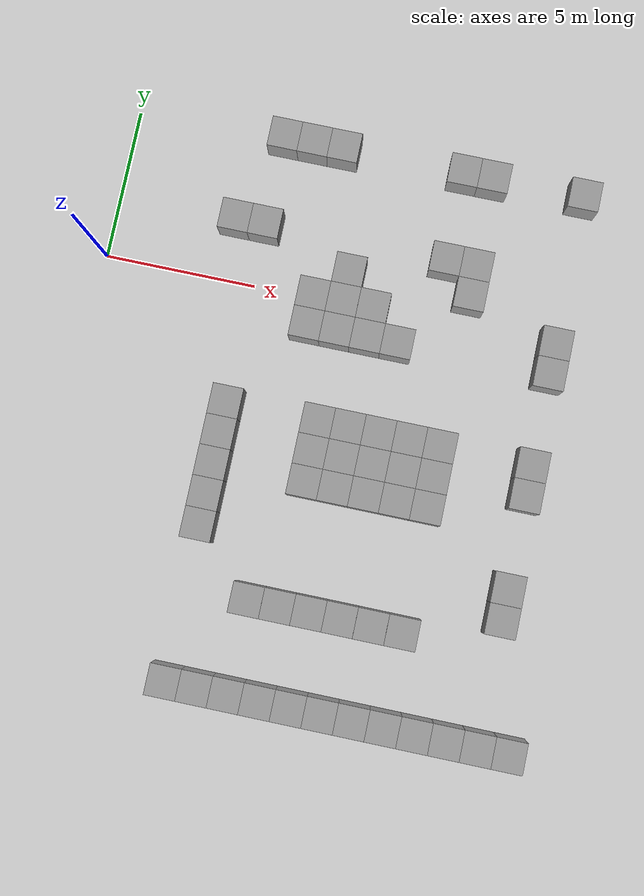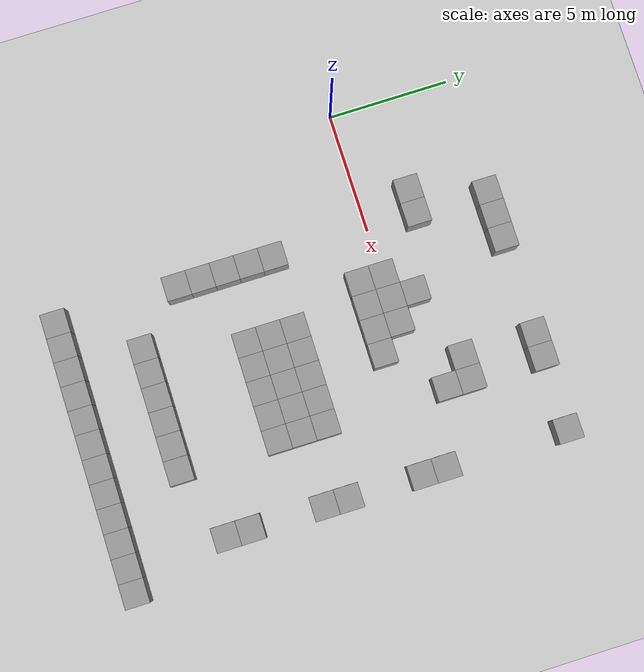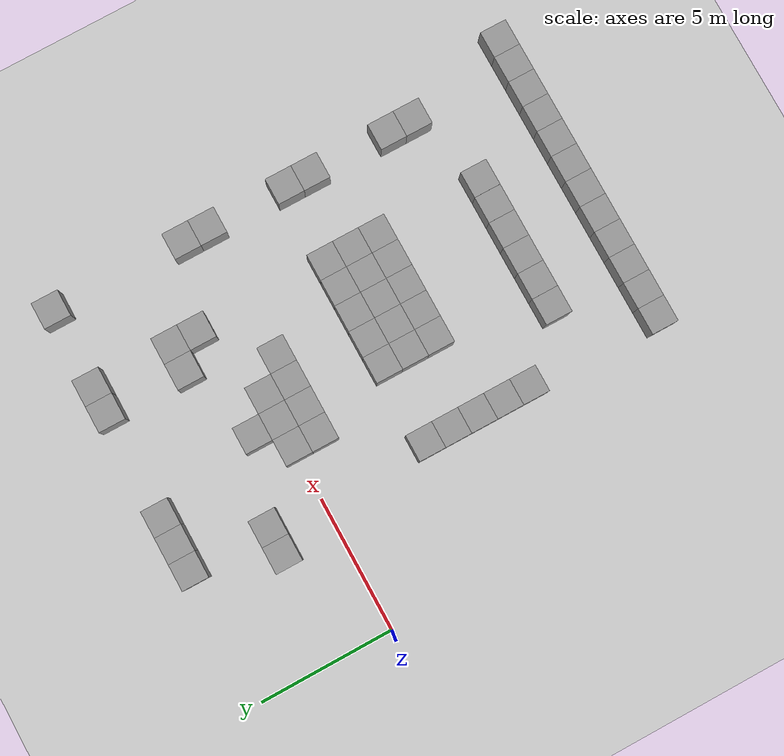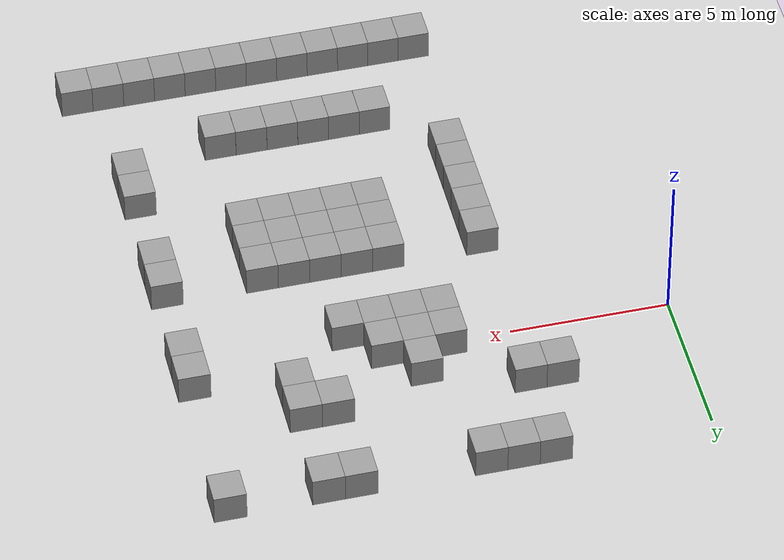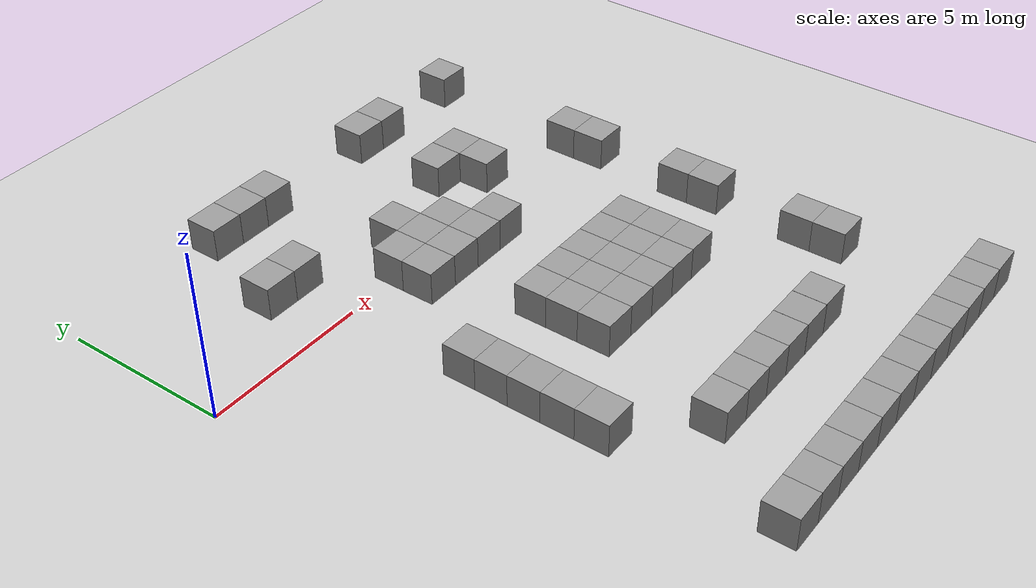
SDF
<sdf version="1.4">
 <world name="default">
  <model name="ground_plane">
   <static>1</static>
   <link name="link">
    <collision name="collision">
     <geometry><plane><normal>0 0 1</normal><size>100 100</size></plane></geometry>
     <surface><friction><ode><mu>100</mu><mu2>50</mu2></ode></friction></surface>
    </collision>
    <visual name="visual">
     <cast_shadows>0</cast_shadows>
     <geometry><plane><normal>0 0 1</normal><size>100 100</size></plane></geometry>
     <material>
      <script><uri>file://media/materials/scripts/gazebo.material</uri><name>Gazebo/Grey</name></script>
     </material>
    </visual>
    <velocity_decay><linear>0</linear><angular>0</angular></velocity_decay>
   </link>
  </model>
  <model name="unit_box_260">
   <pose>5 -12.9999 0.499989 -3e-06 -0 -7e-06</pose>
   <static>1</static>
   <link name="link">
    <inertial>
     <mass>1</mass>
     <inertia><ixx>1</ixx><ixy>0</ixy><ixz>0</ixz><iyy>1</iyy><iyz>0</iyz><izz>1</izz></inertia>
    </inertial>
    <collision name="collision"><geometry><box><size>1 1 1</size></box></geometry></collision>
    <visual name="visual">
     <geometry><box><size>1 1 1</size></box></geometry>
     <material>
      <script><uri>file://media/materials/scripts/gazebo.material</uri><name>Gazebo/Grey</name></script>
     </material>
    </visual>
    <velocity_decay><linear>0</linear><angular>0</angular></velocity_decay>
   </link>
   <static>1</static>
  </model>
  <model name="unit_box_261">
   <pose>6 -13 0.500001 2e-06 3.23117e-27 -7e-06</pose>
   <static>1</static>
   <link name="link">
    <inertial>
     <mass>1</mass>
     <inertia><ixx>1</ixx><ixy>0</ixy><ixz>0</ixz><iyy>1</iyy><iyz>0</iyz><izz>1</izz></inertia>
    </inertial>
    <collision name="collision"><geometry><box><size>1 1 1</size></box></geometry></collision>
    <visual name="visual">
     <geometry><box><size>1 1 1</size></box></geometry>
     <material>
      <script><uri>file://media/materials/scripts/gazebo.material</uri><name>Gazebo/Grey</name></script>
     </material>
    </visual>
    <velocity_decay><linear>0</linear><angular>0</angular></velocity_decay>
   </link>
   <static>1</static>
  </model>
  <model name="unit_box_262">
   <pose>7 -13 0.5 0 0 -1.1e-05</pose>
   <static>1</static>
   <link name="link">
    <inertial>
     <mass>1</mass>
     <inertia><ixx>1</ixx><ixy>0</ixy><ixz>0</ixz><iyy>1</iyy><iyz>0</iyz><izz>1</izz></inertia>
    </inertial>
    <collision name="collision"><geometry><box><size>1 1 1</size></box></geometry></collision>
    <visual name="visual">
     <geometry><box><size>1 1 1</size></box></geometry>
     <material>
      <script><uri>file://media/materials/scripts/gazebo.material</uri><name>Gazebo/Grey</name></script>
     </material>
    </visual>
    <velocity_decay><linear>0</linear><angular>0</angular></velocity_decay>
   </link>
   <static>1</static>
  </model>
  <model name="unit_box_263">
   <pose>8 -13 0.499998 3e-06 -0 -1.1e-05</pose>
   <static>1</static>
   <link name="link">
    <inertial>
     <mass>1</mass>
     <inertia><ixx>1</ixx><ixy>0</ixy><ixz>0</ixz><iyy>1</iyy><iyz>0</iyz><izz>1</izz></inertia>
    </inertial>
    <collision name="collision"><geometry><box><size>1 1 1</size></box></geometry></collision>
    <visual name="visual">
     <geometry><box><size>1 1 1</size></box></geometry>
     <material>
      <script><uri>file://media/materials/scripts/gazebo.material</uri><name>Gazebo/Grey</name></script>
     </material>
    </visual>
    <velocity_decay><linear>0</linear><angular>0</angular></velocity_decay>
   </link>
   <static>1</static>
  </model>
  <model name="unit_box_264">
   <pose>9 -13 0.5 0 0 -1.1e-05</pose>
   <static>1</static>
   <link name="link">
    <inertial>
     <mass>1</mass>
     <inertia><ixx>1</ixx><ixy>0</ixy><ixz>0</ixz><iyy>1</iyy><iyz>0</iyz><izz>1</izz></inertia>
    </inertial>
    <collision name="collision"><geometry><box><size>1 1 1</size></box></geometry></collision>
    <visual name="visual">
     <geometry><box><size>1 1 1</size></box></geometry>
     <material>
      <script><uri>file://media/materials/scripts/gazebo.material</uri><name>Gazebo/Grey</name></script>
     </material>
    </visual>
    <velocity_decay><linear>0</linear><angular>0</angular></velocity_decay>
   </link>
   <static>1</static>
  </model>
  <model name="unit_box_265">
   <pose>10 -13 0.500001 2e-06 -0 -1.1e-05</pose>
   <static>1</static>
   <link name="link">
    <inertial>
     <mass>1</mass>
     <inertia><ixx>1</ixx><ixy>0</ixy><ixz>0</ixz><iyy>1</iyy><iyz>0</iyz><izz>1</izz></inertia>
    </inertial>
    <collision name="collision"><geometry><box><size>1 1 1</size></box></geometry></collision>
    <visual name="visual">
     <geometry><box><size>1 1 1</size></box></geometry>
     <material>
      <script><uri>file://media/materials/scripts/gazebo.material</uri><name>Gazebo/Grey</name></script>
     </material>
    </visual>
    <velocity_decay><linear>0</linear><angular>0</angular></velocity_decay>
   </link>
   <static>1</static>
  </model>
  <model name="unit_box_266">
   <pose>11 -13 0.499992 1e-06 3.23117e-27 -8e-06</pose>
   <static>1</static>
   <link name="link">
    <inertial>
     <mass>1</mass>
     <inertia><ixx>1</ixx><ixy>0</ixy><ixz>0</ixz><iyy>1</iyy><iyz>0</iyz><izz>1</izz></inertia>
    </inertial>
    <collision name="collision"><geometry><box><size>1 1 1</size></box></geometry></collision>
    <visual name="visual">
     <geometry><box><size>1 1 1</size></box></geometry>
     <material>
      <script><uri>file://media/materials/scripts/gazebo.material</uri><name>Gazebo/Grey</name></script>
     </material>
    </visual>
    <velocity_decay><linear>0</linear><angular>0</angular></velocity_decay>
   </link>
   <static>1</static>
  </model>
  <model name="unit_box_267">
   <pose>12 -13 0.5 0 0 -8e-06</pose>
   <static>1</static>
   <link name="link">
    <inertial>
     <mass>1</mass>
     <inertia><ixx>1</ixx><ixy>0</ixy><ixz>0</ixz><iyy>1</iyy><iyz>0</iyz><izz>1</izz></inertia>
    </inertial>
    <collision name="collision"><geometry><box><size>1 1 1</size></box></geometry></collision>
    <visual name="visual">
     <geometry><box><size>1 1 1</size></box></geometry>
     <material>
      <script><uri>file://media/materials/scripts/gazebo.material</uri><name>Gazebo/Grey</name></script>
     </material>
    </visual>
    <velocity_decay><linear>0</linear><angular>0</angular></velocity_decay>
   </link>
   <static>1</static>
  </model>
  <model name="unit_box_268">
   <pose>13 -13 0.500001 1e-06 8.07794e-28 -7e-06</pose>
   <static>1</static>
   <link name="link">
    <inertial>
     <mass>1</mass>
     <inertia><ixx>1</ixx><ixy>0</ixy><ixz>0</ixz><iyy>1</iyy><iyz>0</iyz><izz>1</izz></inertia>
    </inertial>
    <collision name="collision"><geometry><box><size>1 1 1</size></box></geometry></collision>
    <visual name="visual">
     <geometry><box><size>1 1 1</size></box></geometry>
     <material>
      <script><uri>file://media/materials/scripts/gazebo.material</uri><name>Gazebo/Grey</name></script>
     </material>
    </visual>
    <velocity_decay><linear>0</linear><angular>0</angular></velocity_decay>
   </link>
   <static>1</static>
  </model>
  <model name="unit_box_269">
   <pose>14 -13 0.5 0 0 -1e-05</pose>
   <static>1</static>
   <link name="link">
    <inertial>
     <mass>1</mass>
     <inertia><ixx>1</ixx><ixy>0</ixy><ixz>0</ixz><iyy>1</iyy><iyz>0</iyz><izz>1</izz></inertia>
    </inertial>
    <collision name="collision"><geometry><box><size>1 1 1</size></box></geometry></collision>
    <visual name="visual">
     <geometry><box><size>1 1 1</size></box></geometry>
     <material>
      <script><uri>file://media/materials/scripts/gazebo.material</uri><name>Gazebo/Grey</name></script>
     </material>
    </visual>
    <velocity_decay><linear>0</linear><angular>0</angular></velocity_decay>
   </link>
   <static>1</static>
  </model>
  <model name="unit_box_278">
   <pose>15 -13 0.499998 -1e-06 5e-06 -1e-05</pose>
   <static>1</static>
   <link name="link">
    <inertial>
     <mass>1</mass>
     <inertia><ixx>1</ixx><ixy>0</ixy><ixz>0</ixz><iyy>1</iyy><iyz>0</iyz><izz>1</izz></inertia>
    </inertial>
    <collision name="collision"><geometry><box><size>1 1 1</size></box></geometry></collision>
    <visual name="visual">
     <geometry><box><size>1 1 1</size></box></geometry>
     <material>
      <script><uri>file://media/materials/scripts/gazebo.material</uri><name>Gazebo/Grey</name></script>
     </material>
    </visual>
    <velocity_decay><linear>0</linear><angular>0</angular></velocity_decay>
   </link>
   <static>1</static>
  </model>
  <model name="unit_box_279">
   <pose>16 -13 0.49999 0 0 -1e-05</pose>
   <static>1</static>
   <link name="link">
    <inertial>
     <mass>1</mass>
     <inertia><ixx>1</ixx><ixy>0</ixy><ixz>0</ixz><iyy>1</iyy><iyz>0</iyz><izz>1</izz></inertia>
    </inertial>
    <collision name="collision"><geometry><box><size>1 1 1</size></box></geometry></collision>
    <visual name="visual">
     <geometry><box><size>1 1 1</size></box></geometry>
     <material>
      <script><uri>file://media/materials/scripts/gazebo.material</uri><name>Gazebo/Grey</name></script>
     </material>
    </visual>
    <velocity_decay><linear>0</linear><angular>0</angular></velocity_decay>
   </link>
   <static>1</static>
  </model>
  <model name="unit_box_136_0">
   <pose>12.002 -9.99866 0.5 0 -0 0.000239</pose>
   <link name="link">
    <inertial>
     <mass>1</mass>
     <inertia><ixx>1</ixx><ixy>0</ixy><ixz>0</ixz><iyy>1</iyy><iyz>0</iyz><izz>1</izz></inertia>
    </inertial>
    <collision name="collision"><geometry><box><size>1 1 1</size></box></geometry></collision>
    <visual name="visual">
     <geometry><box><size>1 1 1</size></box></geometry>
     <material>
      <script><uri>file://media/materials/scripts/gazebo.material</uri><name>Gazebo/Grey</name></script>
     </material>
    </visual>
    <velocity_decay><linear>0</linear><angular>0</angular></velocity_decay>
   </link>
   <static>1</static>
  </model>
  <model name="unit_box_137_0">
   <pose>11.0009 -9.99839 0.5 0 0 -0.000186</pose>
   <link name="link">
    <inertial>
     <mass>1</mass>
     <inertia><ixx>1</ixx><ixy>0</ixy><ixz>0</ixz><iyy>1</iyy><iyz>0</iyz><izz>1</izz></inertia>
    </inertial>
    <collision name="collision"><geometry><box><size>1 1 1</size></box></geometry></collision>
    <visual name="visual">
     <geometry><box><size>1 1 1</size></box></geometry>
     <material>
      <script><uri>file://media/materials/scripts/gazebo.material</uri><name>Gazebo/Grey</name></script>
     </material>
    </visual>
    <velocity_decay><linear>0</linear><angular>0</angular></velocity_decay>
   </link>
   <static>1</static>
  </model>
  <model name="unit_box_138_0">
   <pose>10.0004 -9.99582 0.5 0 0 -0.000845</pose>
   <link name="link">
    <inertial>
     <mass>1</mass>
     <inertia><ixx>1</ixx><ixy>0</ixy><ixz>0</ixz><iyy>1</iyy><iyz>0</iyz><izz>1</izz></inertia>
    </inertial>
    <collision name="collision"><geometry><box><size>1 1 1</size></box></geometry></collision>
    <visual name="visual">
     <geometry><box><size>1 1 1</size></box></geometry>
     <material>
      <script><uri>file://media/materials/scripts/gazebo.material</uri><name>Gazebo/Grey</name></script>
     </material>
    </visual>
    <velocity_decay><linear>0</linear><angular>0</angular></velocity_decay>
   </link>
   <static>1</static>
  </model>
  <model name="unit_box_139_0">
   <pose>8.99996 -9.99562 0.5 0 0 -0.000179</pose>
   <link name="link">
    <inertial>
     <mass>1</mass>
     <inertia><ixx>1</ixx><ixy>0</ixy><ixz>0</ixz><iyy>1</iyy><iyz>0</iyz><izz>1</izz></inertia>
    </inertial>
    <collision name="collision"><geometry><box><size>1 1 1</size></box></geometry></collision>
    <visual name="visual">
     <geometry><box><size>1 1 1</size></box></geometry>
     <material>
      <script><uri>file://media/materials/scripts/gazebo.material</uri><name>Gazebo/Grey</name></script>
     </material>
    </visual>
    <velocity_decay><linear>0</linear><angular>0</angular></velocity_decay>
   </link>
   <static>1</static>
  </model>
  <model name="unit_box_140_0">
   <pose>7.99985 -9.99836 0.5 0 0 -0.00014</pose>
   <link name="link">
    <inertial>
     <mass>1</mass>
     <inertia><ixx>1</ixx><ixy>0</ixy><ixz>0</ixz><iyy>1</iyy><iyz>0</iyz><izz>1</izz></inertia>
    </inertial>
    <collision name="collision"><geometry><box><size>1 1 1</size></box></geometry></collision>
    <visual name="visual">
     <geometry><box><size>1 1 1</size></box></geometry>
     <material>
      <script><uri>file://media/materials/scripts/gazebo.material</uri><name>Gazebo/Grey</name></script>
     </material>
    </visual>
    <velocity_decay><linear>0</linear><angular>0</angular></velocity_decay>
   </link>
   <static>1</static>
  </model>
  <model name="unit_box_141_0">
   <pose>6.99959 -9.99977 0.5 0 0 -6.6e-05</pose>
   <link name="link">
    <inertial>
     <mass>1</mass>
     <inertia><ixx>1</ixx><ixy>0</ixy><ixz>0</ixz><iyy>1</iyy><iyz>0</iyz><izz>1</izz></inertia>
    </inertial>
    <collision name="collision"><geometry><box><size>1 1 1</size></box></geometry></collision>
    <visual name="visual">
     <geometry><box><size>1 1 1</size></box></geometry>
     <material>
      <script><uri>file://media/materials/scripts/gazebo.material</uri><name>Gazebo/Grey</name></script>
     </material>
    </visual>
    <velocity_decay><linear>0</linear><angular>0</angular></velocity_decay>
   </link>
   <static>1</static>
  </model>
  <model name="unit_box_152_0">
   <pose>5 -7.99989 0.5 0 -0 0</pose>
   <link name="link">
    <inertial>
     <mass>1</mass>
     <inertia><ixx>1</ixx><ixy>0</ixy><ixz>0</ixz><iyy>1</iyy><iyz>0</iyz><izz>1</izz></inertia>
    </inertial>
    <collision name="collision"><geometry><box><size>1 1 1</size></box></geometry></collision>
    <visual name="visual">
     <geometry><box><size>1 1 1</size></box></geometry>
     <material>
      <script><uri>file://media/materials/scripts/gazebo.material</uri><name>Gazebo/Grey</name></script>
     </material>
    </visual>
    <velocity_decay><linear>0</linear><angular>0</angular></velocity_decay>
   </link>
   <static>1</static>
  </model>
  <model name="unit_box_153_0">
   <pose>5.00001 -6.99989 0.5 0 -0 0</pose>
   <link name="link">
    <inertial>
     <mass>1</mass>
     <inertia><ixx>1</ixx><ixy>0</ixy><ixz>0</ixz><iyy>1</iyy><iyz>0</iyz><izz>1</izz></inertia>
    </inertial>
    <collision name="collision"><geometry><box><size>1 1 1</size></box></geometry></collision>
    <visual name="visual">
     <geometry><box><size>1 1 1</size></box></geometry>
     <material>
      <script><uri>file://media/materials/scripts/gazebo.material</uri><name>Gazebo/Grey</name></script>
     </material>
    </visual>
    <velocity_decay><linear>0</linear><angular>0</angular></velocity_decay>
   </link>
   <static>1</static>
  </model>
  <model name="unit_box_154_0">
   <pose>5.00001 -5.99989 0.5 0 0 -2e-06</pose>
   <link name="link">
    <inertial>
     <mass>1</mass>
     <inertia><ixx>1</ixx><ixy>0</ixy><ixz>0</ixz><iyy>1</iyy><iyz>0</iyz><izz>1</izz></inertia>
    </inertial>
    <collision name="collision"><geometry><box><size>1 1 1</size></box></geometry></collision>
    <visual name="visual">
     <geometry><box><size>1 1 1</size></box></geometry>
     <material>
      <script><uri>file://media/materials/scripts/gazebo.material</uri><name>Gazebo/Grey</name></script>
     </material>
    </visual>
    <velocity_decay><linear>0</linear><angular>0</angular></velocity_decay>
   </link>
   <static>1</static>
  </model>
  <model name="unit_box_155_0">
   <pose>5 -4.99989 0.5 0 0 -2e-06</pose>
   <link name="link">
    <inertial>
     <mass>1</mass>
     <inertia><ixx>1</ixx><ixy>0</ixy><ixz>0</ixz><iyy>1</iyy><iyz>0</iyz><izz>1</izz></inertia>
    </inertial>
    <collision name="collision"><geometry><box><size>1 1 1</size></box></geometry></collision>
    <visual name="visual">
     <geometry><box><size>1 1 1</size></box></geometry>
     <material>
      <script><uri>file://media/materials/scripts/gazebo.material</uri><name>Gazebo/Grey</name></script>
     </material>
    </visual>
    <velocity_decay><linear>0</linear><angular>0</angular></velocity_decay>
   </link>
   <static>1</static>
  </model>
  <model name="unit_box_156_0">
   <pose>5.00001 -3.99989 0.5 0 0 -2e-06</pose>
   <link name="link">
    <inertial>
     <mass>1</mass>
     <inertia><ixx>1</ixx><ixy>0</ixy><ixz>0</ixz><iyy>1</iyy><iyz>0</iyz><izz>1</izz></inertia>
    </inertial>
    <collision name="collision"><geometry><box><size>1 1 1</size></box></geometry></collision>
    <visual name="visual">
     <geometry><box><size>1 1 1</size></box></geometry>
     <material>
      <script><uri>file://media/materials/scripts/gazebo.material</uri><name>Gazebo/Grey</name></script>
     </material>
    </visual>
    <velocity_decay><linear>0</linear><angular>0</angular></velocity_decay>
   </link>
   <static>1</static>
  </model>
  <model name="unit_box_159_0">
   <pose>7.99999 -3.99999 0.5 0 -0 0</pose>
   <link name="link">
    <inertial>
     <mass>1</mass>
     <inertia><ixx>1</ixx><ixy>0</ixy><ixz>0</ixz><iyy>1</iyy><iyz>0</iyz><izz>1</izz></inertia>
    </inertial>
    <collision name="collision"><geometry><box><size>1 1 1</size></box></geometry></collision>
    <visual name="visual">
     <geometry><box><size>1 1 1</size></box></geometry>
     <material>
      <script><uri>file://media/materials/scripts/gazebo.material</uri><name>Gazebo/Grey</name></script>
     </material>
    </visual>
    <velocity_decay><linear>0</linear><angular>0</angular></velocity_decay>
   </link>
   <static>1</static>
  </model>
  <model name="unit_box_160_0">
   <pose>8 -4.99999 0.5 0 -0 1e-06</pose>
   <link name="link">
    <inertial>
     <mass>1</mass>
     <inertia><ixx>1</ixx><ixy>0</ixy><ixz>0</ixz><iyy>1</iyy><iyz>0</iyz><izz>1</izz></inertia>
    </inertial>
    <collision name="collision"><geometry><box><size>1 1 1</size></box></geometry></collision>
    <visual name="visual">
     <geometry><box><size>1 1 1</size></box></geometry>
     <material>
      <script><uri>file://media/materials/scripts/gazebo.material</uri><name>Gazebo/Grey</name></script>
     </material>
    </visual>
    <velocity_decay><linear>0</linear><angular>0</angular></velocity_decay>
   </link>
   <static>1</static>
  </model>
  <model name="unit_box_161_0">
   <pose>8 -6 0.5 0 0 -2e-06</pose>
   <link name="link">
    <inertial>
     <mass>1</mass>
     <inertia><ixx>1</ixx><ixy>0</ixy><ixz>0</ixz><iyy>1</iyy><iyz>0</iyz><izz>1</izz></inertia>
    </inertial>
    <collision name="collision"><geometry><box><size>1 1 1</size></box></geometry></collision>
    <visual name="visual">
     <geometry><box><size>1 1 1</size></box></geometry>
     <material>
      <script><uri>file://media/materials/scripts/gazebo.material</uri><name>Gazebo/Grey</name></script>
     </material>
    </visual>
    <velocity_decay><linear>0</linear><angular>0</angular></velocity_decay>
   </link>
   <static>1</static>
  </model>
  <model name="unit_box_163_0">
   <pose>10 -6 0.5 0 -0 8e-06</pose>
   <link name="link">
    <inertial>
     <mass>1</mass>
     <inertia><ixx>1</ixx><ixy>0</ixy><ixz>0</ixz><iyy>1</iyy><iyz>0</iyz><izz>1</izz></inertia>
    </inertial>
    <collision name="collision"><geometry><box><size>1 1 1</size></box></geometry></collision>
    <visual name="visual">
     <geometry><box><size>1 1 1</size></box></geometry>
     <material>
      <script><uri>file://media/materials/scripts/gazebo.material</uri><name>Gazebo/Grey</name></script>
     </material>
    </visual>
    <velocity_decay><linear>0</linear><angular>0</angular></velocity_decay>
   </link>
   <static>1</static>
  </model>
  <model name="unit_box_164_0">
   <pose>11 -6 0.5 0 -0 6e-06</pose>
   <link name="link">
    <inertial>
     <mass>1</mass>
     <inertia><ixx>1</ixx><ixy>0</ixy><ixz>0</ixz><iyy>1</iyy><iyz>0</iyz><izz>1</izz></inertia>
    </inertial>
    <collision name="collision"><geometry><box><size>1 1 1</size></box></geometry></collision>
    <visual name="visual">
     <geometry><box><size>1 1 1</size></box></geometry>
     <material>
      <script><uri>file://media/materials/scripts/gazebo.material</uri><name>Gazebo/Grey</name></script>
     </material>
    </visual>
    <velocity_decay><linear>0</linear><angular>0</angular></velocity_decay>
   </link>
   <static>1</static>
  </model>
  <model name="unit_box_165_0">
   <pose>12 -6.00001 0.5 0 -0 4e-06</pose>
   <link name="link">
    <inertial>
     <mass>1</mass>
     <inertia><ixx>1</ixx><ixy>0</ixy><ixz>0</ixz><iyy>1</iyy><iyz>0</iyz><izz>1</izz></inertia>
    </inertial>
    <collision name="collision"><geometry><box><size>1 1 1</size></box></geometry></collision>
    <visual name="visual">
     <geometry><box><size>1 1 1</size></box></geometry>
     <material>
      <script><uri>file://media/materials/scripts/gazebo.material</uri><name>Gazebo/Grey</name></script>
     </material>
    </visual>
    <velocity_decay><linear>0</linear><angular>0</angular></velocity_decay>
   </link>
   <static>1</static>
  </model>
  <model name="unit_box_166_0">
   <pose>12 -5 0.5 0 -0 2e-06</pose>
   <link name="link">
    <inertial>
     <mass>1</mass>
     <inertia><ixx>1</ixx><ixy>0</ixy><ixz>0</ixz><iyy>1</iyy><iyz>0</iyz><izz>1</izz></inertia>
    </inertial>
    <collision name="collision"><geometry><box><size>1 1 1</size></box></geometry></collision>
    <visual name="visual">
     <geometry><box><size>1 1 1</size></box></geometry>
     <material>
      <script><uri>file://media/materials/scripts/gazebo.material</uri><name>Gazebo/Grey</name></script>
     </material>
    </visual>
    <velocity_decay><linear>0</linear><angular>0</angular></velocity_decay>
   </link>
   <static>1</static>
  </model>
  <model name="unit_box_167_0">
   <pose>11 -4.99999 0.5 0 0 -1e-06</pose>
   <link name="link">
    <inertial>
     <mass>1</mass>
     <inertia><ixx>1</ixx><ixy>0</ixy><ixz>0</ixz><iyy>1</iyy><iyz>0</iyz><izz>1</izz></inertia>
    </inertial>
    <collision name="collision"><geometry><box><size>1 1 1</size></box></geometry></collision>
    <visual name="visual">
     <geometry><box><size>1 1 1</size></box></geometry>
     <material>
      <script><uri>file://media/materials/scripts/gazebo.material</uri><name>Gazebo/Grey</name></script>
     </material>
    </visual>
    <velocity_decay><linear>0</linear><angular>0</angular></velocity_decay>
   </link>
   <static>1</static>
  </model>
  <model name="unit_box_168_0">
   <pose>10 -4.99999 0.5 0 -0 1e-06</pose>
   <link name="link">
    <inertial>
     <mass>1</mass>
     <inertia><ixx>1</ixx><ixy>0</ixy><ixz>0</ixz><iyy>1</iyy><iyz>0</iyz><izz>1</izz></inertia>
    </inertial>
    <collision name="collision"><geometry><box><size>1 1 1</size></box></geometry></collision>
    <visual name="visual">
     <geometry><box><size>1 1 1</size></box></geometry>
     <material>
      <script><uri>file://media/materials/scripts/gazebo.material</uri><name>Gazebo/Grey</name></script>
     </material>
    </visual>
    <velocity_decay><linear>0</linear><angular>0</angular></velocity_decay>
   </link>
   <static>1</static>
  </model>
  <model name="unit_box_170_0">
   <pose>9 -6 0.5 0 -0 3e-06</pose>
   <link name="link">
    <inertial>
     <mass>1</mass>
     <inertia><ixx>1</ixx><ixy>0</ixy><ixz>0</ixz><iyy>1</iyy><iyz>0</iyz><izz>1</izz></inertia>
    </inertial>
    <collision name="collision"><geometry><box><size>1 1 1</size></box></geometry></collision>
    <visual name="visual">
     <geometry><box><size>1 1 1</size></box></geometry>
     <material>
      <script><uri>file://media/materials/scripts/gazebo.material</uri><name>Gazebo/Grey</name></script>
     </material>
    </visual>
    <velocity_decay><linear>0</linear><angular>0</angular></velocity_decay>
   </link>
   <static>1</static>
  </model>
  <model name="unit_box_171_0">
   <pose>9 -5 0.5 0 -0 2e-06</pose>
   <link name="link">
    <inertial>
     <mass>1</mass>
     <inertia><ixx>1</ixx><ixy>0</ixy><ixz>0</ixz><iyy>1</iyy><iyz>0</iyz><izz>1</izz></inertia>
    </inertial>
    <collision name="collision"><geometry><box><size>1 1 1</size></box></geometry></collision>
    <visual name="visual">
     <geometry><box><size>1 1 1</size></box></geometry>
     <material>
      <script><uri>file://media/materials/scripts/gazebo.material</uri><name>Gazebo/Grey</name></script>
     </material>
    </visual>
    <velocity_decay><linear>0</linear><angular>0</angular></velocity_decay>
   </link>
   <static>1</static>
  </model>
  <model name="unit_box_172_0">
   <pose>9 -4 0.5 0 -0 0</pose>
   <link name="link">
    <inertial>
     <mass>1</mass>
     <inertia><ixx>1</ixx><ixy>0</ixy><ixz>0</ixz><iyy>1</iyy><iyz>0</iyz><izz>1</izz></inertia>
    </inertial>
    <collision name="collision"><geometry><box><size>1 1 1</size></box></geometry></collision>
    <visual name="visual">
     <geometry><box><size>1 1 1</size></box></geometry>
     <material>
      <script><uri>file://media/materials/scripts/gazebo.material</uri><name>Gazebo/Grey</name></script>
     </material>
    </visual>
    <velocity_decay><linear>0</linear><angular>0</angular></velocity_decay>
   </link>
   <static>1</static>
  </model>
  <model name="unit_box_173_0">
   <pose>10 -3.99999 0.5 0 0 -1e-06</pose>
   <link name="link">
    <inertial>
     <mass>1</mass>
     <inertia><ixx>1</ixx><ixy>0</ixy><ixz>0</ixz><iyy>1</iyy><iyz>0</iyz><izz>1</izz></inertia>
    </inertial>
    <collision name="collision"><geometry><box><size>1 1 1</size></box></geometry></collision>
    <visual name="visual">
     <geometry><box><size>1 1 1</size></box></geometry>
     <material>
      <script><uri>file://media/materials/scripts/gazebo.material</uri><name>Gazebo/Grey</name></script>
     </material>
    </visual>
    <velocity_decay><linear>0</linear><angular>0</angular></velocity_decay>
   </link>
   <static>1</static>
  </model>
  <model name="unit_box_174_0">
   <pose>11 -3.99999 0.5 0 0 -1e-06</pose>
   <link name="link">
    <inertial>
     <mass>1</mass>
     <inertia><ixx>1</ixx><ixy>0</ixy><ixz>0</ixz><iyy>1</iyy><iyz>0</iyz><izz>1</izz></inertia>
    </inertial>
    <collision name="collision"><geometry><box><size>1 1 1</size></box></geometry></collision>
    <visual name="visual">
     <geometry><box><size>1 1 1</size></box></geometry>
     <material>
      <script><uri>file://media/materials/scripts/gazebo.material</uri><name>Gazebo/Grey</name></script>
     </material>
    </visual>
    <velocity_decay><linear>0</linear><angular>0</angular></velocity_decay>
   </link>
   <static>1</static>
  </model>
  <model name="unit_box_175_0">
   <pose>12 -4 0.5 0 -0 0</pose>
   <link name="link">
    <inertial>
     <mass>1</mass>
     <inertia><ixx>1</ixx><ixy>0</ixy><ixz>0</ixz><iyy>1</iyy><iyz>0</iyz><izz>1</izz></inertia>
    </inertial>
    <collision name="collision"><geometry><box><size>1 1 1</size></box></geometry></collision>
    <visual name="visual">
     <geometry><box><size>1 1 1</size></box></geometry>
     <material>
      <script><uri>file://media/materials/scripts/gazebo.material</uri><name>Gazebo/Grey</name></script>
     </material>
    </visual>
    <velocity_decay><linear>0</linear><angular>0</angular></velocity_decay>
   </link>
   <static>1</static>
  </model>
  <model name="unit_box_178_0">
   <pose>15 -3.99999 0.5 0 0 -5e-06</pose>
   <link name="link">
    <inertial>
     <mass>1</mass>
     <inertia><ixx>1</ixx><ixy>0</ixy><ixz>0</ixz><iyy>1</iyy><iyz>0</iyz><izz>1</izz></inertia>
    </inertial>
    <collision name="collision"><geometry><box><size>1 1 1</size></box></geometry></collision>
    <visual name="visual">
     <geometry><box><size>1 1 1</size></box></geometry>
     <material>
      <script><uri>file://media/materials/scripts/gazebo.material</uri><name>Gazebo/Grey</name></script>
     </material>
    </visual>
    <velocity_decay><linear>0</linear><angular>0</angular></velocity_decay>
   </link>
   <static>1</static>
  </model>
  <model name="unit_box_179_0">
   <pose>15 -4.99999 0.5 0 0 -5e-06</pose>
   <link name="link">
    <inertial>
     <mass>1</mass>
     <inertia><ixx>1</ixx><ixy>0</ixy><ixz>0</ixz><iyy>1</iyy><iyz>0</iyz><izz>1</izz></inertia>
    </inertial>
    <collision name="collision"><geometry><box><size>1 1 1</size></box></geometry></collision>
    <visual name="visual">
     <geometry><box><size>1 1 1</size></box></geometry>
     <material>
      <script><uri>file://media/materials/scripts/gazebo.material</uri><name>Gazebo/Grey</name></script>
     </material>
    </visual>
    <velocity_decay><linear>0</linear><angular>0</angular></velocity_decay>
   </link>
   <static>1</static>
  </model>
  <model name="unit_box_182_0">
   <pose>15 -8.00001 0.5 0 -0 2e-06</pose>
   <link name="link">
    <inertial>
     <mass>1</mass>
     <inertia><ixx>1</ixx><ixy>0</ixy><ixz>0</ixz><iyy>1</iyy><iyz>0</iyz><izz>1</izz></inertia>
    </inertial>
    <collision name="collision"><geometry><box><size>1 1 1</size></box></geometry></collision>
    <visual name="visual">
     <geometry><box><size>1 1 1</size></box></geometry>
     <material>
      <script><uri>file://media/materials/scripts/gazebo.material</uri><name>Gazebo/Grey</name></script>
     </material>
    </visual>
    <velocity_decay><linear>0</linear><angular>0</angular></velocity_decay>
   </link>
   <static>1</static>
  </model>
  <model name="unit_box_183_0">
   <pose>15 -9.00002 0.5 0 -0 4e-06</pose>
   <link name="link">
    <inertial>
     <mass>1</mass>
     <inertia><ixx>1</ixx><ixy>0</ixy><ixz>0</ixz><iyy>1</iyy><iyz>0</iyz><izz>1</izz></inertia>
    </inertial>
    <collision name="collision"><geometry><box><size>1 1 1</size></box></geometry></collision>
    <visual name="visual">
     <geometry><box><size>1 1 1</size></box></geometry>
     <material>
      <script><uri>file://media/materials/scripts/gazebo.material</uri><name>Gazebo/Grey</name></script>
     </material>
    </visual>
    <velocity_decay><linear>0</linear><angular>0</angular></velocity_decay>
   </link>
   <static>1</static>
  </model>
  <model name="unit_box_206_0">
   <pose>4 2 0.5 0 0 -1e-06</pose>
   <link name="link">
    <inertial>
     <mass>1</mass>
     <inertia><ixx>1</ixx><ixy>0</ixy><ixz>0</ixz><iyy>1</iyy><iyz>0</iyz><izz>1</izz></inertia>
    </inertial>
    <collision name="collision"><geometry><box><size>1 1 1</size></box></geometry></collision>
    <visual name="visual">
     <geometry><box><size>1 1 1</size></box></geometry>
     <material>
      <script><uri>file://media/materials/scripts/gazebo.material</uri><name>Gazebo/Grey</name></script>
     </material>
    </visual>
    <velocity_decay><linear>0</linear><angular>0</angular></velocity_decay>
   </link>
   <static>1</static>
  </model>
  <model name="unit_box_208_0">
   <pose>5 2 0.5 0 -0 1e-06</pose>
   <link name="link">
    <inertial>
     <mass>1</mass>
     <inertia><ixx>1</ixx><ixy>0</ixy><ixz>0</ixz><iyy>1</iyy><iyz>0</iyz><izz>1</izz></inertia>
    </inertial>
    <collision name="collision"><geometry><box><size>1 1 1</size></box></geometry></collision>
    <visual name="visual">
     <geometry><box><size>1 1 1</size></box></geometry>
     <material>
      <script><uri>file://media/materials/scripts/gazebo.material</uri><name>Gazebo/Grey</name></script>
     </material>
    </visual>
    <velocity_decay><linear>0</linear><angular>0</angular></velocity_decay>
   </link>
   <static>1</static>
  </model>
  <model name="unit_box_212_0">
   <pose>4.99999 5 0.5 0 -0 1e-06</pose>
   <link name="link">
    <inertial>
     <mass>1</mass>
     <inertia><ixx>1</ixx><ixy>0</ixy><ixz>0</ixz><iyy>1</iyy><iyz>0</iyz><izz>1</izz></inertia>
    </inertial>
    <collision name="collision"><geometry><box><size>1 1 1</size></box></geometry></collision>
    <visual name="visual">
     <geometry><box><size>1 1 1</size></box></geometry>
     <material>
      <script><uri>file://media/materials/scripts/gazebo.material</uri><name>Gazebo/Grey</name></script>
     </material>
    </visual>
    <velocity_decay><linear>0</linear><angular>0</angular></velocity_decay>
   </link>
   <static>1</static>
  </model>
  <model name="unit_box_213_0">
   <pose>6 5 0.5 0 -0 1e-06</pose>
   <link name="link">
    <inertial>
     <mass>1</mass>
     <inertia><ixx>1</ixx><ixy>0</ixy><ixz>0</ixz><iyy>1</iyy><iyz>0</iyz><izz>1</izz></inertia>
    </inertial>
    <collision name="collision"><geometry><box><size>1 1 1</size></box></geometry></collision>
    <visual name="visual">
     <geometry><box><size>1 1 1</size></box></geometry>
     <material>
      <script><uri>file://media/materials/scripts/gazebo.material</uri><name>Gazebo/Grey</name></script>
     </material>
    </visual>
    <velocity_decay><linear>0</linear><angular>0</angular></velocity_decay>
   </link>
   <static>1</static>
  </model>
  <model name="unit_box_214_0">
   <pose>7.00001 5 0.5 0 -0 3e-06</pose>
   <link name="link">
    <inertial>
     <mass>1</mass>
     <inertia><ixx>1</ixx><ixy>0</ixy><ixz>0</ixz><iyy>1</iyy><iyz>0</iyz><izz>1</izz></inertia>
    </inertial>
    <collision name="collision"><geometry><box><size>1 1 1</size></box></geometry></collision>
    <visual name="visual">
     <geometry><box><size>1 1 1</size></box></geometry>
     <material>
      <script><uri>file://media/materials/scripts/gazebo.material</uri><name>Gazebo/Grey</name></script>
     </material>
    </visual>
    <velocity_decay><linear>0</linear><angular>0</angular></velocity_decay>
   </link>
   <static>1</static>
  </model>
  <model name="unit_box_234_0">
   <pose>12 5 0.5 0 -0 1e-06</pose>
   <link name="link">
    <inertial>
     <mass>1</mass>
     <inertia><ixx>1</ixx><ixy>0</ixy><ixz>0</ixz><iyy>1</iyy><iyz>0</iyz><izz>1</izz></inertia>
    </inertial>
    <collision name="collision"><geometry><box><size>1 1 1</size></box></geometry></collision>
    <visual name="visual">
     <geometry><box><size>1 1 1</size></box></geometry>
     <material>
      <script><uri>file://media/materials/scripts/gazebo.material</uri><name>Gazebo/Grey</name></script>
     </material>
    </visual>
    <velocity_decay><linear>0</linear><angular>0</angular></velocity_decay>
   </link>
   <static>1</static>
  </model>
  <model name="unit_box_235_0">
   <pose>11 5 0.5 0 -0 1e-06</pose>
   <link name="link">
    <inertial>
     <mass>1</mass>
     <inertia><ixx>1</ixx><ixy>0</ixy><ixz>0</ixz><iyy>1</iyy><iyz>0</iyz><izz>1</izz></inertia>
    </inertial>
    <collision name="collision"><geometry><box><size>1 1 1</size></box></geometry></collision>
    <visual name="visual">
     <geometry><box><size>1 1 1</size></box></geometry>
     <material>
      <script><uri>file://media/materials/scripts/gazebo.material</uri><name>Gazebo/Grey</name></script>
     </material>
    </visual>
    <velocity_decay><linear>0</linear><angular>0</angular></velocity_decay>
   </link>
   <static>1</static>
  </model>
  <model name="unit_box_238_0">
   <pose>6.99999 6e-06 0.5 0 0 -6e-06</pose>
   <link name="link">
    <inertial>
     <mass>1</mass>
     <inertia><ixx>1</ixx><ixy>0</ixy><ixz>0</ixz><iyy>1</iyy><iyz>0</iyz><izz>1</izz></inertia>
    </inertial>
    <collision name="collision"><geometry><box><size>1 1 1</size></box></geometry></collision>
    <visual name="visual">
     <geometry><box><size>1 1 1</size></box></geometry>
     <material>
      <script><uri>file://media/materials/scripts/gazebo.material</uri><name>Gazebo/Grey</name></script>
     </material>
    </visual>
    <velocity_decay><linear>0</linear><angular>0</angular></velocity_decay>
   </link>
   <static>1</static>
  </model>
  <model name="unit_box_239_0">
   <pose>7.99999 1e-06 0.5 0 0 -3e-06</pose>
   <link name="link">
    <inertial>
     <mass>1</mass>
     <inertia><ixx>1</ixx><ixy>0</ixy><ixz>0</ixz><iyy>1</iyy><iyz>0</iyz><izz>1</izz></inertia>
    </inertial>
    <collision name="collision"><geometry><box><size>1 1 1</size></box></geometry></collision>
    <visual name="visual">
     <geometry><box><size>1 1 1</size></box></geometry>
     <material>
      <script><uri>file://media/materials/scripts/gazebo.material</uri><name>Gazebo/Grey</name></script>
     </material>
    </visual>
    <velocity_decay><linear>0</linear><angular>0</angular></velocity_decay>
   </link>
   <static>1</static>
  </model>
  <model name="unit_box_240_0">
   <pose>8 1.00001 0.5 0 0 -2e-06</pose>
   <link name="link">
    <inertial>
     <mass>1</mass>
     <inertia><ixx>1</ixx><ixy>0</ixy><ixz>0</ixz><iyy>1</iyy><iyz>0</iyz><izz>1</izz></inertia>
    </inertial>
    <collision name="collision"><geometry><box><size>1 1 1</size></box></geometry></collision>
    <visual name="visual">
     <geometry><box><size>1 1 1</size></box></geometry>
     <material>
      <script><uri>file://media/materials/scripts/gazebo.material</uri><name>Gazebo/Grey</name></script>
     </material>
    </visual>
    <velocity_decay><linear>0</linear><angular>0</angular></velocity_decay>
   </link>
   <static>1</static>
  </model>
  <model name="unit_box_243_0">
   <pose>9 -4e-06 0.5 0 0 -2e-06</pose>
   <link name="link">
    <inertial>
     <mass>1</mass>
     <inertia><ixx>1</ixx><ixy>0</ixy><ixz>0</ixz><iyy>1</iyy><iyz>0</iyz><izz>1</izz></inertia>
    </inertial>
    <collision name="collision"><geometry><box><size>1 1 1</size></box></geometry></collision>
    <visual name="visual">
     <geometry><box><size>1 1 1</size></box></geometry>
     <material>
      <script><uri>file://media/materials/scripts/gazebo.material</uri><name>Gazebo/Grey</name></script>
     </material>
    </visual>
    <velocity_decay><linear>0</linear><angular>0</angular></velocity_decay>
   </link>
   <static>1</static>
  </model>
  <model name="unit_box_248">
   <pose>6.99999 -0.999998 0.5 0 0 -5e-06</pose>
   <link name="link">
    <inertial>
     <mass>1</mass>
     <inertia><ixx>1</ixx><ixy>0</ixy><ixz>0</ixz><iyy>1</iyy><iyz>0</iyz><izz>1</izz></inertia>
    </inertial>
    <collision name="collision"><geometry><box><size>1 1 1</size></box></geometry></collision>
    <visual name="visual">
     <geometry><box><size>1 1 1</size></box></geometry>
     <material>
      <script><uri>file://media/materials/scripts/gazebo.material</uri><name>Gazebo/Grey</name></script>
     </material>
    </visual>
    <velocity_decay><linear>0</linear><angular>0</angular></velocity_decay>
   </link>
   <static>1</static>
  </model>
  <model name="unit_box_249">
   <pose>8 -1 0.5 0 0 -2e-06</pose>
   <link name="link">
    <inertial>
     <mass>1</mass>
     <inertia><ixx>1</ixx><ixy>0</ixy><ixz>0</ixz><iyy>1</iyy><iyz>0</iyz><izz>1</izz></inertia>
    </inertial>
    <collision name="collision"><geometry><box><size>1 1 1</size></box></geometry></collision>
    <visual name="visual">
     <geometry><box><size>1 1 1</size></box></geometry>
     <material>
      <script><uri>file://media/materials/scripts/gazebo.material</uri><name>Gazebo/Grey</name></script>
     </material>
    </visual>
    <velocity_decay><linear>0</linear><angular>0</angular></velocity_decay>
   </link>
   <static>1</static>
  </model>
  <model name="unit_box_250">
   <pose>9 -1.00001 0.5 0 0 -2e-06</pose>
   <link name="link">
    <inertial>
     <mass>1</mass>
     <inertia><ixx>1</ixx><ixy>0</ixy><ixz>0</ixz><iyy>1</iyy><iyz>0</iyz><izz>1</izz></inertia>
    </inertial>
    <collision name="collision"><geometry><box><size>1 1 1</size></box></geometry></collision>
    <visual name="visual">
     <geometry><box><size>1 1 1</size></box></geometry>
     <material>
      <script><uri>file://media/materials/scripts/gazebo.material</uri><name>Gazebo/Grey</name></script>
     </material>
    </visual>
    <velocity_decay><linear>0</linear><angular>0</angular></velocity_decay>
   </link>
   <static>1</static>
  </model>
  <model name="unit_box_251_0">
   <pose>10 -0.999988 0.5 0 0 -2e-06</pose>
   <link name="link">
    <inertial>
     <mass>1</mass>
     <inertia><ixx>1</ixx><ixy>0</ixy><ixz>0</ixz><iyy>1</iyy><iyz>0</iyz><izz>1</izz></inertia>
    </inertial>
    <collision name="collision"><geometry><box><size>1 1 1</size></box></geometry></collision>
    <visual name="visual">
     <geometry><box><size>1 1 1</size></box></geometry>
     <material>
      <script><uri>file://media/materials/scripts/gazebo.material</uri><name>Gazebo/Grey</name></script>
     </material>
    </visual>
    <velocity_decay><linear>0</linear><angular>0</angular></velocity_decay>
   </link>
   <static>1</static>
  </model>
  <model name="unit_box_254_0">
   <pose>11 2.00001 0.5 0 -0 1e-06</pose>
   <link name="link">
    <inertial>
     <mass>1</mass>
     <inertia><ixx>1</ixx><ixy>0</ixy><ixz>0</ixz><iyy>1</iyy><iyz>0</iyz><izz>1</izz></inertia>
    </inertial>
    <collision name="collision"><geometry><box><size>1 1 1</size></box></geometry></collision>
    <visual name="visual">
     <geometry><box><size>1 1 1</size></box></geometry>
     <material>
      <script><uri>file://media/materials/scripts/gazebo.material</uri><name>Gazebo/Grey</name></script>
     </material>
    </visual>
    <velocity_decay><linear>0</linear><angular>0</angular></velocity_decay>
   </link>
   <static>1</static>
  </model>
  <model name="unit_box_257_0">
   <pose>12 1 0.5 0 -0 2e-06</pose>
   <link name="link">
    <inertial>
     <mass>1</mass>
     <inertia><ixx>1</ixx><ixy>0</ixy><ixz>0</ixz><iyy>1</iyy><iyz>0</iyz><izz>1</izz></inertia>
    </inertial>
    <collision name="collision"><geometry><box><size>1 1 1</size></box></geometry></collision>
    <visual name="visual">
     <geometry><box><size>1 1 1</size></box></geometry>
     <material>
      <script><uri>file://media/materials/scripts/gazebo.material</uri><name>Gazebo/Grey</name></script>
     </material>
    </visual>
    <velocity_decay><linear>0</linear><angular>0</angular></velocity_decay>
   </link>
   <static>1</static>
  </model>
  <model name="unit_box_258_0">
   <pose>12 2.00001 0.5 0 -0 2e-06</pose>
   <link name="link">
    <inertial>
     <mass>1</mass>
     <inertia><ixx>1</ixx><ixy>0</ixy><ixz>0</ixz><iyy>1</iyy><iyz>0</iyz><izz>1</izz></inertia>
    </inertial>
    <collision name="collision"><geometry><box><size>1 1 1</size></box></geometry></collision>
    <visual name="visual">
     <geometry><box><size>1 1 1</size></box></geometry>
     <material>
      <script><uri>file://media/materials/scripts/gazebo.material</uri><name>Gazebo/Grey</name></script>
     </material>
    </visual>
    <velocity_decay><linear>0</linear><angular>0</angular></velocity_decay>
   </link>
   <static>1</static>
  </model>
  <model name="unit_box_259_0">
   <pose>15 -1 0.5 0 0 -3e-06</pose>
   <link name="link">
    <inertial>
     <mass>1</mass>
     <inertia><ixx>1</ixx><ixy>0</ixy><ixz>0</ixz><iyy>1</iyy><iyz>0</iyz><izz>1</izz></inertia>
    </inertial>
    <collision name="collision"><geometry><box><size>1 1 1</size></box></geometry></collision>
    <visual name="visual">
     <geometry><box><size>1 1 1</size></box></geometry>
     <material>
      <script><uri>file://media/materials/scripts/gazebo.material</uri><name>Gazebo/Grey</name></script>
     </material>
    </visual>
    <velocity_decay><linear>0</linear><angular>0</angular></velocity_decay>
   </link>
   <static>1</static>
  </model>
  <model name="unit_box_260_0">
   <pose>15 -1e-06 0.5 0 0 -3e-06</pose>
   <link name="link">
    <inertial>
     <mass>1</mass>
     <inertia><ixx>1</ixx><ixy>0</ixy><ixz>0</ixz><iyy>1</iyy><iyz>0</iyz><izz>1</izz></inertia>
    </inertial>
    <collision name="collision"><geometry><box><size>1 1 1</size></box></geometry></collision>
    <visual name="visual">
     <geometry><box><size>1 1 1</size></box></geometry>
     <material>
      <script><uri>file://media/materials/scripts/gazebo.material</uri><name>Gazebo/Grey</name></script>
     </material>
    </visual>
    <velocity_decay><linear>0</linear><angular>0</angular></velocity_decay>
   </link>
   <static>1</static>
  </model>
  <model name="unit_box_289">
   <pose>15 5 0.5 0 0 -5e-06</pose>
   <link name="link">
    <inertial>
     <mass>1</mass>
     <inertia><ixx>1</ixx><ixy>0</ixy><ixz>0</ixz><iyy>1</iyy><iyz>0</iyz><izz>1</izz></inertia>
    </inertial>
    <collision name="collision"><geometry><box><size>1 1 1</size></box></geometry></collision>
    <visual name="visual">
     <geometry><box><size>1 1 1</size></box></geometry>
     <material>
      <script><uri>file://media/materials/scripts/gazebo.material</uri><name>Gazebo/Grey</name></script>
     </material>
    </visual>
    <velocity_decay><linear>0</linear><angular>0</angular></velocity_decay>
   </link>
   <static>1</static>
  </model>
 </world>
</sdf>
